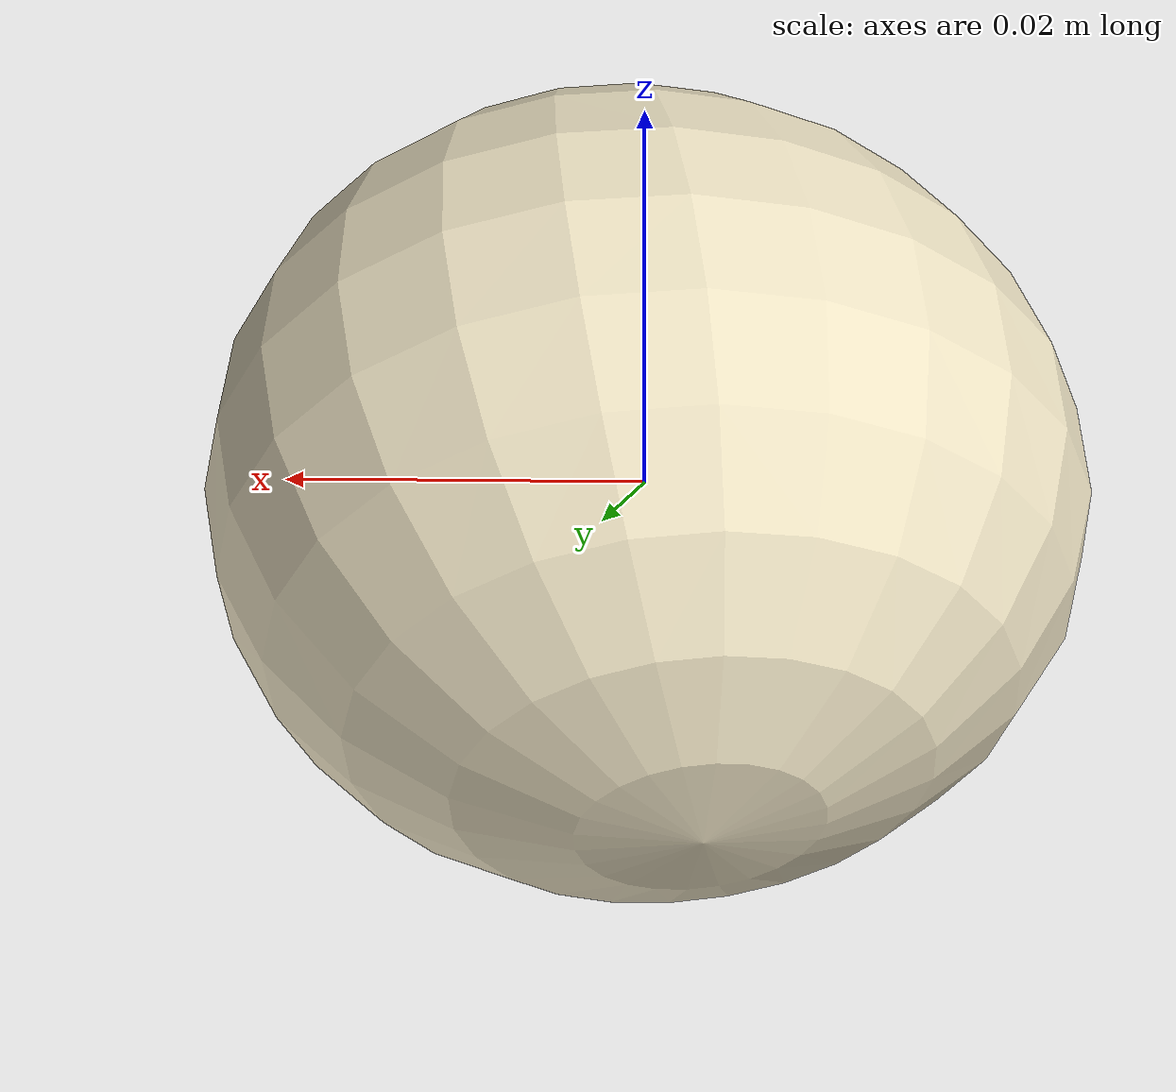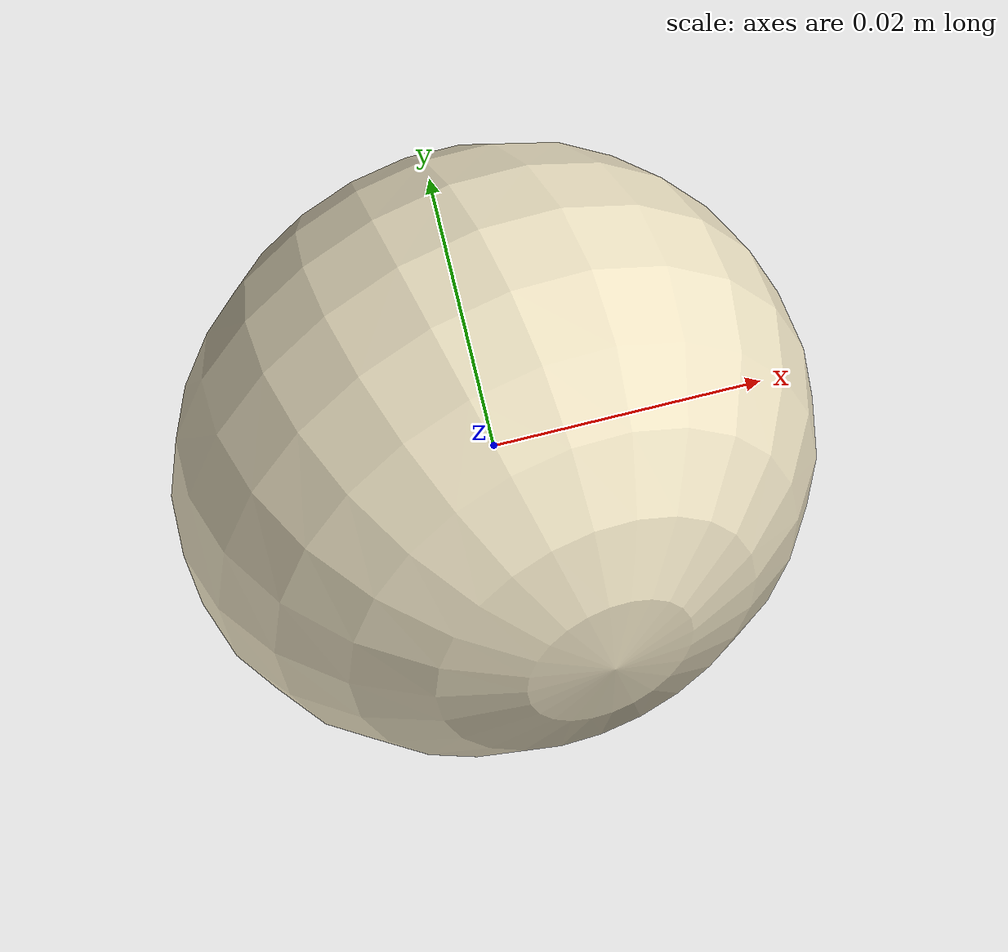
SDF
<?xml version="1.0"?>
<sdf version="1.7">
  <model name="cotton_pick_B_12">
    <static>false</static>
    <allow_auto_disable>false</allow_auto_disable>
    <link name="cotton_pick_B_12_link">
      <gravity>false</gravity>
      <self_collide>false</self_collide>
      <inertial>
        <mass>0.01200</mass>
        <inertia>
          <ixx>0.00000197</ixx>
          <iyy>0.00000197</iyy>
          <izz>0.00000197</izz>
          <ixy>0</ixy>
          <ixz>0</ixz>
          <iyz>0</iyz>
        </inertia>
      </inertial>
      <visual name="cotton_pick_B_12_visual">
        <geometry>
          <mesh>
            <uri>model://cotton_pick_B_12/meshes/cotton_pick_B_12.dae</uri>
          </mesh>
        </geometry>
      </visual>
      <collision name="cotton_pick_B_12_sphere_collision">
        <geometry>
          <sphere>
            <radius>0.02026</radius>
          </sphere>
        </geometry>
        <surface>
          <friction>
            <ode>
              <mu>1.6</mu>
              <mu2>1.6</mu2>
            </ode>
          </friction>
          <contact>
            <ode>
              <kp>8000</kp>
              <kd>80</kd>
            </ode>
          </contact>
        </surface>
      </collision>
    </link>
  </model>
</sdf>
